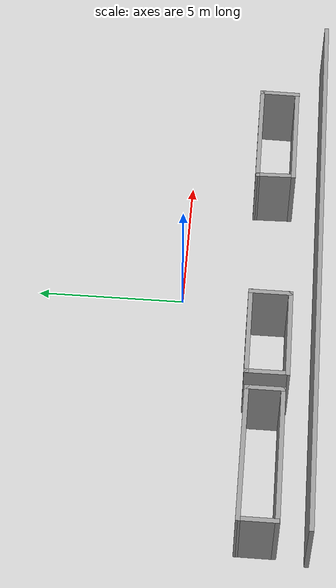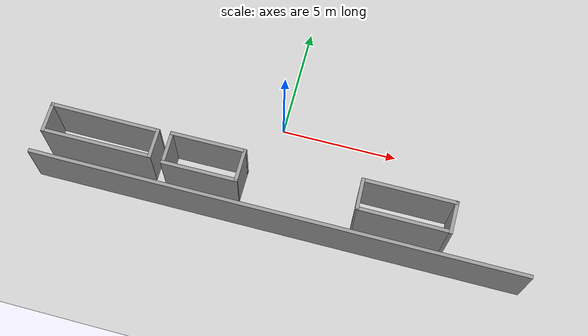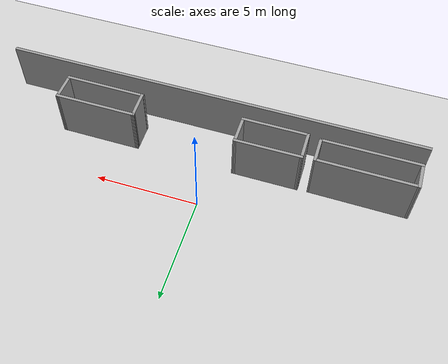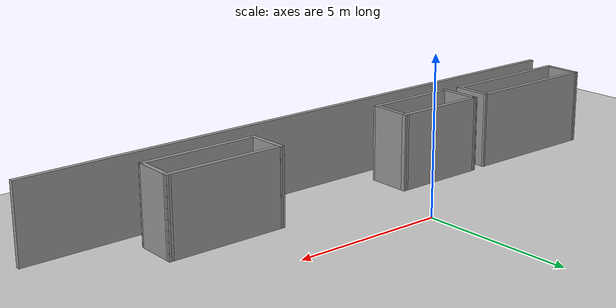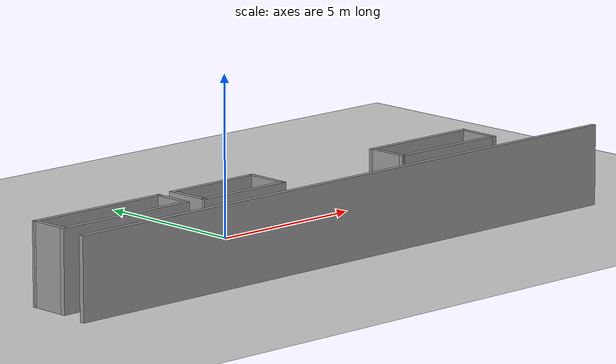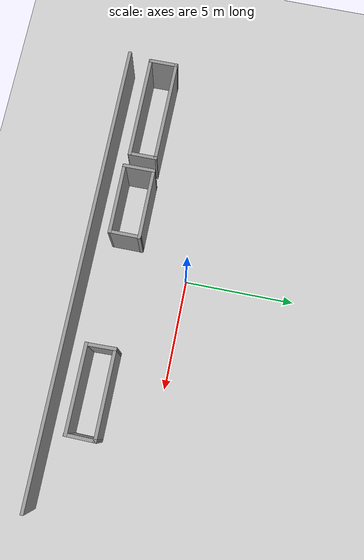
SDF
<sdf version="1.7">
 <world name="default">
  <light name="sun" type="directional">
   <pose>0 0 10 0 -0 0</pose>
   <diffuse>0.8 0.8 0.8 1</diffuse>
   <specular>0.2 0.2 0.2 1</specular>
   <attenuation>
    <range>1000</range>
    <constant>0.9</constant>
    <linear>0.01</linear>
    <quadratic>0.001</quadratic>
   </attenuation>
   <direction>-0.5 0.1 -0.9</direction>
   <spot><inner_angle>0</inner_angle><outer_angle>0</outer_angle><falloff>0</falloff></spot>
  </light>
  <model name="ground_plane">
   <static>1</static>
   <link name="link">
    <collision name="collision">
     <geometry><plane><normal>0 0 1</normal><size>100 100</size></plane></geometry>
     <surface><friction><ode><mu>100</mu><mu2>50</mu2></ode></friction></surface>
    </collision>
    <visual name="visual">
     <cast_shadows>0</cast_shadows>
     <geometry><plane><normal>0 0 1</normal><size>100 100</size></plane></geometry>
     <material>
      <script><uri>file://media/materials/scripts/gazebo.material</uri><name>Gazebo/Grey</name></script>
     </material>
    </visual>
   </link>
  </model>
  <gravity>0 0 -9.8</gravity>
  <magnetic_field>6e-06 2.3e-05 -4.2e-05</magnetic_field>
  <atmosphere type="adiabatic"/>
  <physics type="ode">
   <max_step_size>0.001</max_step_size>
   <real_time_factor>1</real_time_factor>
   <real_time_update_rate>1000</real_time_update_rate>
  </physics>
  <scene><ambient>0.4 0.4 0.4 1</ambient><background>0.7 0.7 0.7 1</background><shadows>1</shadows></scene>
  <spherical_coordinates>
   <surface_model>EARTH_WGS84</surface_model>
   <latitude_deg>0</latitude_deg>
   <longitude_deg>0</longitude_deg>
   <elevation>0</elevation>
   <heading_deg>0</heading_deg>
  </spherical_coordinates>
  <audio><device>default</device></audio>
  <model name="Mapa_prueba_parking">
   <pose>0.742 -2.31075 0 0 -0 0</pose>
   <link name="Wall_1">
    <collision name="Wall_1_Collision">
     <geometry><box><size>3.25002 0.15 2.5</size></box></geometry>
     <pose>0 0 1.25 0 -0 0</pose>
    </collision>
    <visual name="Wall_1_Visual">
     <pose>0 0 1.25 0 -0 0</pose>
     <geometry><box><size>3.25002 0.15 2.5</size></box></geometry>
     <material>
      <script><uri>file://media/materials/scripts/gazebo.material</uri><name>Gazebo/Grey</name></script>
      <ambient>1 1 1 1</ambient>
     </material>
     <meta><layer>0</layer></meta>
    </visual>
    <pose>-3.362 -0.00425 0 0 -0 0.003226</pose>
   </link>
   <link name="Wall_11">
    <collision name="Wall_11_Collision">
     <geometry><box><size>1.46004 0.15 2.5</size></box></geometry>
     <pose>0 0 1.25 0 -0 0</pose>
    </collision>
    <visual name="Wall_11_Visual">
     <pose>0 0 1.25 0 -0 0</pose>
     <geometry><box><size>1.46004 0.15 2.5</size></box></geometry>
     <material>
      <script><uri>file://media/materials/scripts/gazebo.material</uri><name>Gazebo/Grey</name></script>
      <ambient>1 1 1 1</ambient>
     </material>
     <meta><layer>0</layer></meta>
    </visual>
    <pose>-4.917 -0.66425 0 0 -0 1.57843</pose>
   </link>
   <link name="Wall_13">
    <collision name="Wall_13_Collision">
     <geometry><box><size>3.24002 0.15 2.5</size></box></geometry>
     <pose>0 0 1.25 0 -0 0</pose>
    </collision>
    <visual name="Wall_13_Visual">
     <pose>0 0 1.25 0 -0 0</pose>
     <geometry><box><size>3.24002 0.15 2.5</size></box></geometry>
     <material>
      <script><uri>file://media/materials/scripts/gazebo.material</uri><name>Gazebo/Grey</name></script>
      <ambient>1 1 1 1</ambient>
     </material>
     <meta><layer>0</layer></meta>
    </visual>
    <pose>-3.367 -1.32425 0 0 -0 0.003236</pose>
   </link>
   <link name="Wall_16">
    <collision name="Wall_16_Collision">
     <geometry><box><size>20.75 0.15 2.5</size></box></geometry>
     <pose>0 0 1.25 0 -0 0</pose>
    </collision>
    <visual name="Wall_16_Visual">
     <pose>0 0 1.25 0 -0 0</pose>
     <geometry><box><size>20.75 0.15 2.5</size></box></geometry>
     <material>
      <script><uri>file://media/materials/scripts/gazebo.material</uri><name>Gazebo/Grey</name></script>
      <ambient>1 1 1 1</ambient>
     </material>
     <meta><layer>0</layer></meta>
    </visual>
    <pose>0 -2.23575 0 0 -0 0</pose>
   </link>
   <link name="Wall_2">
    <collision name="Wall_2_Collision">
     <geometry><box><size>1.46 0.15 2.5</size></box></geometry>
     <pose>0 0 1.25 0 -0 0</pose>
    </collision>
    <visual name="Wall_2_Visual">
     <pose>0 0 1.25 0 -0 0</pose>
     <geometry><box><size>1.46 0.15 2.5</size></box></geometry>
     <material>
      <script><uri>file://media/materials/scripts/gazebo.material</uri><name>Gazebo/Grey</name></script>
      <ambient>1 1 1 1</ambient>
     </material>
     <meta><layer>0</layer></meta>
    </visual>
    <pose>-1.822 -0.65425 0 0 -0 -1.5708</pose>
   </link>
   <link name="Wall_6">
    <collision name="Wall_6_Collision">
     <geometry><box><size>1.39036 0.15 2.5</size></box></geometry>
     <pose>0 0 1.25 0 -0 0</pose>
    </collision>
    <visual name="Wall_6_Visual">
     <pose>0 0 1.25 0 -0 0</pose>
     <geometry><box><size>1.39036 0.15 2.5</size></box></geometry>
     <material>
      <script><uri>file://media/materials/scripts/gazebo.material</uri><name>Gazebo/Grey</name></script>
      <ambient>1 1 1 1</ambient>
     </material>
     <meta><layer>0</layer></meta>
    </visual>
    <pose>3.153 -0.60925 0 0 -0 1.59499</pose>
   </link>
   <link name="Wall_7">
    <collision name="Wall_7_Collision">
     <geometry><box><size>4 0.15 2.5</size></box></geometry>
     <pose>0 0 1.25 0 -0 0</pose>
    </collision>
    <visual name="Wall_7_Visual">
     <pose>0 0 1.25 0 -0 0</pose>
     <geometry><box><size>4 0.15 2.5</size></box></geometry>
     <material>
      <script><uri>file://media/materials/scripts/gazebo.material</uri><name>Gazebo/Grey</name></script>
      <ambient>1 1 1 1</ambient>
     </material>
     <meta><layer>0</layer></meta>
    </visual>
    <pose>5.063 0.01075 0 0 -0 0</pose>
   </link>
   <link name="Wall_8">
    <collision name="Wall_8_Collision">
     <geometry><box><size>1.41016 0.15 2.5</size></box></geometry>
     <pose>0 0 1.25 0 -0 0</pose>
    </collision>
    <visual name="Wall_8_Visual">
     <pose>0 0 1.25 0 -0 0</pose>
     <geometry><box><size>1.41016 0.15 2.5</size></box></geometry>
     <material>
      <script><uri>file://media/materials/scripts/gazebo.material</uri><name>Gazebo/Grey</name></script>
      <ambient>1 1 1 1</ambient>
     </material>
     <meta><layer>0</layer></meta>
    </visual>
    <pose>6.978 -0.61925 0 0 -0 -1.58667</pose>
   </link>
   <link name="Wall_9">
    <collision name="Wall_9_Collision">
     <geometry><box><size>3.96001 0.15 2.5</size></box></geometry>
     <pose>0 0 1.25 0 -0 0</pose>
    </collision>
    <visual name="Wall_9_Visual">
     <pose>0 0 1.25 0 -0 0</pose>
     <geometry><box><size>3.96001 0.15 2.5</size></box></geometry>
     <material>
      <script><uri>file://media/materials/scripts/gazebo.material</uri><name>Gazebo/Grey</name></script>
      <ambient>1 1 1 1</ambient>
     </material>
     <meta><layer>0</layer></meta>
    </visual>
    <pose>5.063 -1.23425 0 0 -0 3.13897</pose>
   </link>
   <static>1</static>
  </model>
  <model name="Mapa_prueba_parking_0">
   <pose>-4.72614 -1.80125 0 0 -0 0</pose>
   <link name="Wall_21">
    <collision name="Wall_21_Collision">
     <geometry><box><size>1.3275 0.15 2.5</size></box></geometry>
     <pose>0 0 1.25 0 -0 0</pose>
    </collision>
    <visual name="Wall_21_Visual">
     <pose>0 0 1.25 0 -0 0</pose>
     <geometry><box><size>1.3275 0.15 2.5</size></box></geometry>
     <material>
      <script><uri>file://media/materials/scripts/gazebo.material</uri><name>Gazebo/Grey</name></script>
      <ambient>1 1 1 1</ambient>
     </material>
     <meta><layer>0</layer></meta>
    </visual>
    <pose>-4.65076 -1.126 0 0 -0 -1.5708</pose>
   </link>
   <link name="Wall_22">
    <collision name="Wall_22_Collision">
     <geometry><box><size>4.75 0.15 2.5</size></box></geometry>
     <pose>0 0 1.25 0 -0 0</pose>
    </collision>
    <visual name="Wall_22_Visual">
     <pose>0 0 1.25 0 -0 0</pose>
     <geometry><box><size>4.75 0.15 2.5</size></box></geometry>
     <material>
      <script><uri>file://media/materials/scripts/gazebo.material</uri><name>Gazebo/Grey</name></script>
      <ambient>1 1 1 1</ambient>
     </material>
     <meta><layer>0</layer></meta>
    </visual>
    <pose>-2.35077 -1.72625 0 0 -0 0</pose>
   </link>
   <link name="Wall_23">
    <collision name="Wall_23_Collision">
     <geometry><box><size>1.3045 0.15 2.5</size></box></geometry>
     <pose>0 0 1.25 0 -0 0</pose>
    </collision>
    <visual name="Wall_23_Visual">
     <pose>0 0 1.25 0 -0 0</pose>
     <geometry><box><size>1.3045 0.15 2.5</size></box></geometry>
     <material>
      <script><uri>file://media/materials/scripts/gazebo.material</uri><name>Gazebo/Grey</name></script>
      <ambient>1 1 1 1</ambient>
     </material>
     <meta><layer>0</layer></meta>
    </visual>
    <pose>-0.050766 -1.1375 0 0 -0 1.5708</pose>
   </link>
   <link name="Wall_25">
    <collision name="Wall_25_Collision">
     <geometry><box><size>4.75006 0.15 2.5</size></box></geometry>
     <pose>0 0 1.25 0 -0 0</pose>
    </collision>
    <visual name="Wall_25_Visual">
     <pose>0 0 1.25 0 -0 0</pose>
     <geometry><box><size>4.75006 0.15 2.5</size></box></geometry>
     <material>
      <script><uri>file://media/materials/scripts/gazebo.material</uri><name>Gazebo/Grey</name></script>
      <ambient>1 1 1 1</ambient>
     </material>
     <meta><layer>0</layer></meta>
    </visual>
    <pose>-2.35077 -0.54875 0 0 -0 -0.005</pose>
   </link>
   <static>1</static>
  </model>
 </world>
</sdf>
